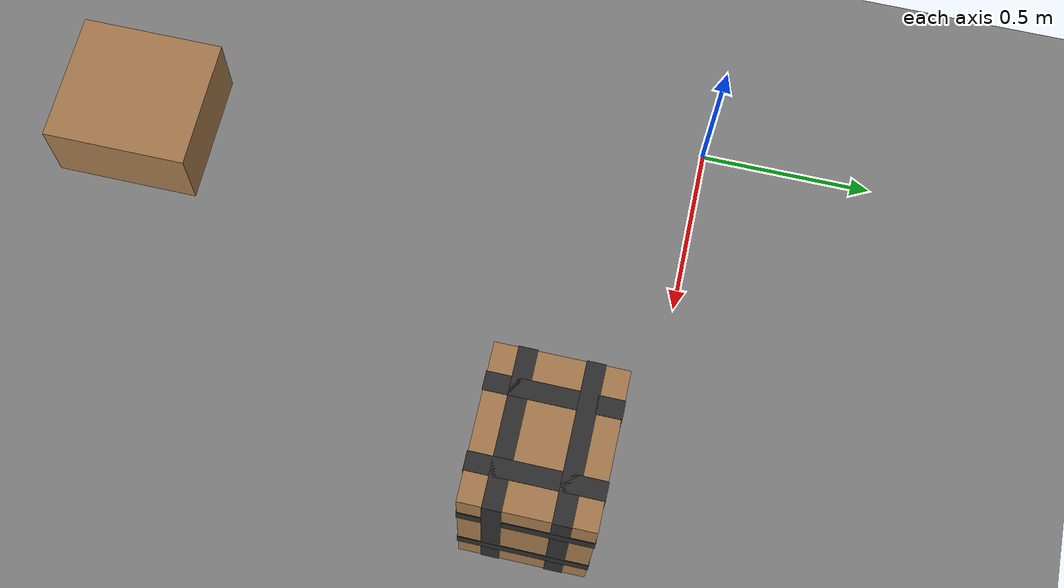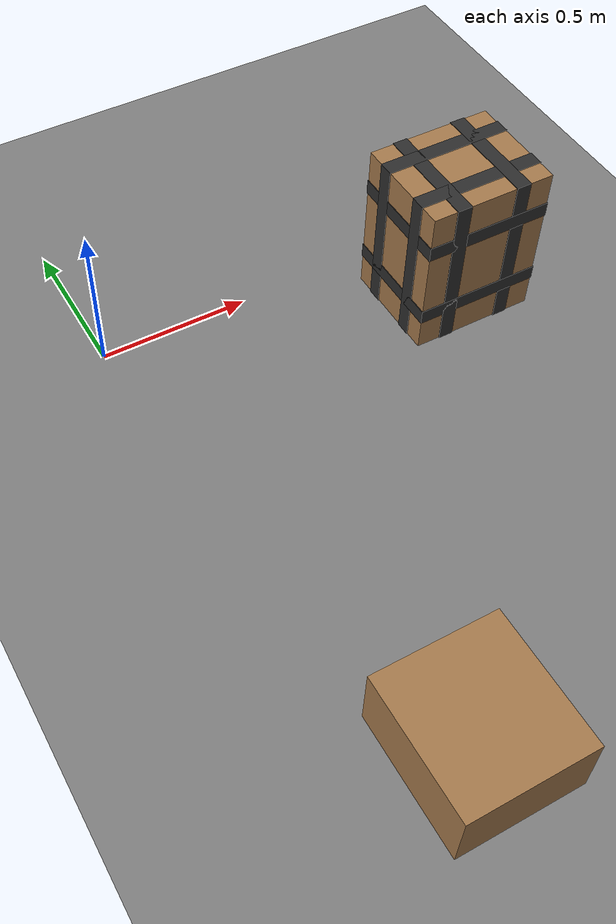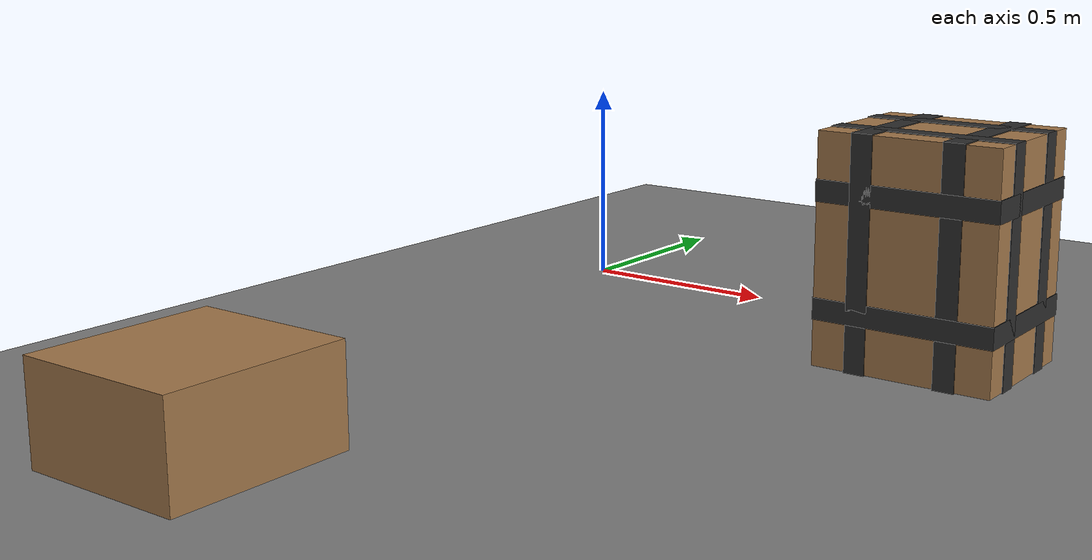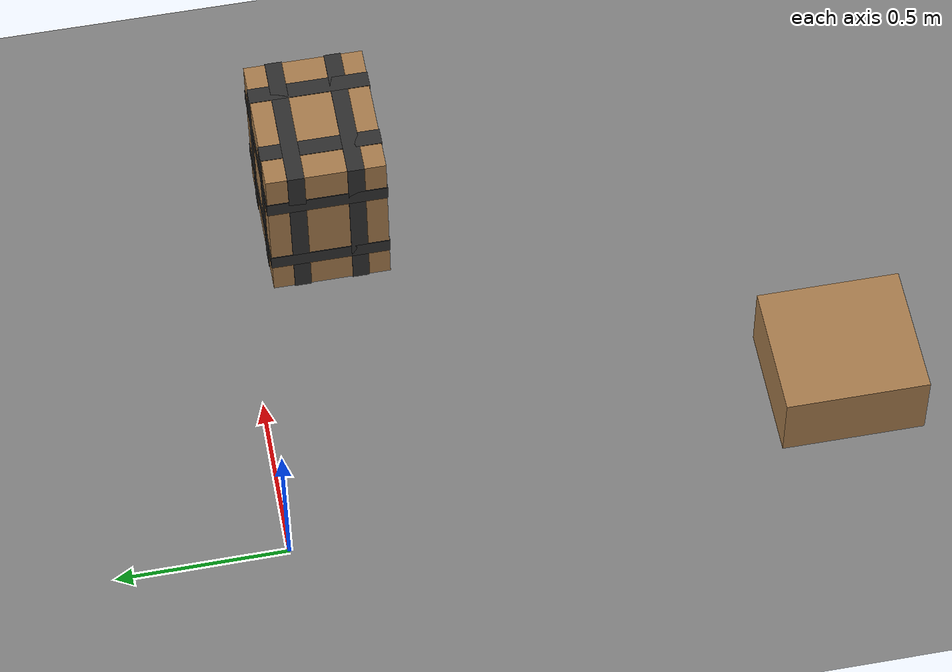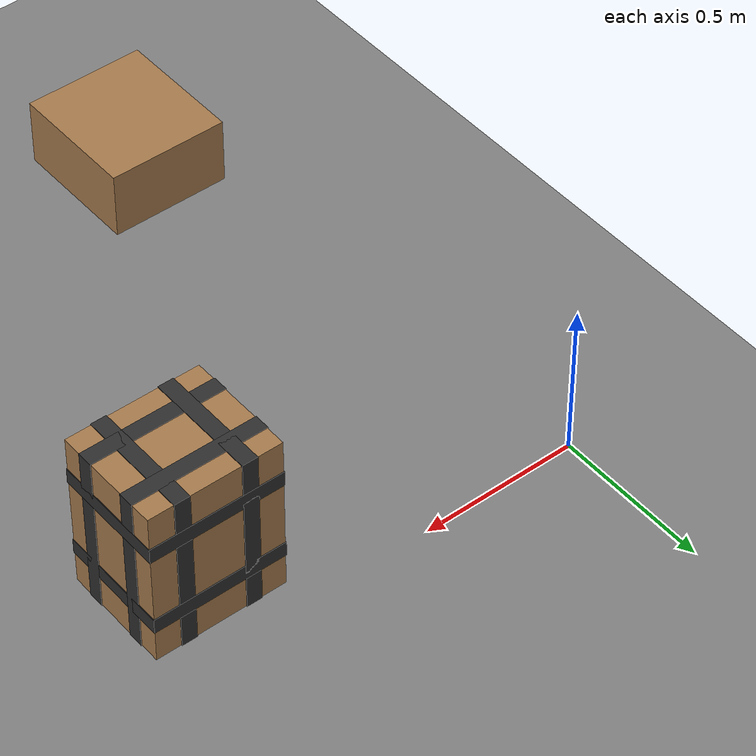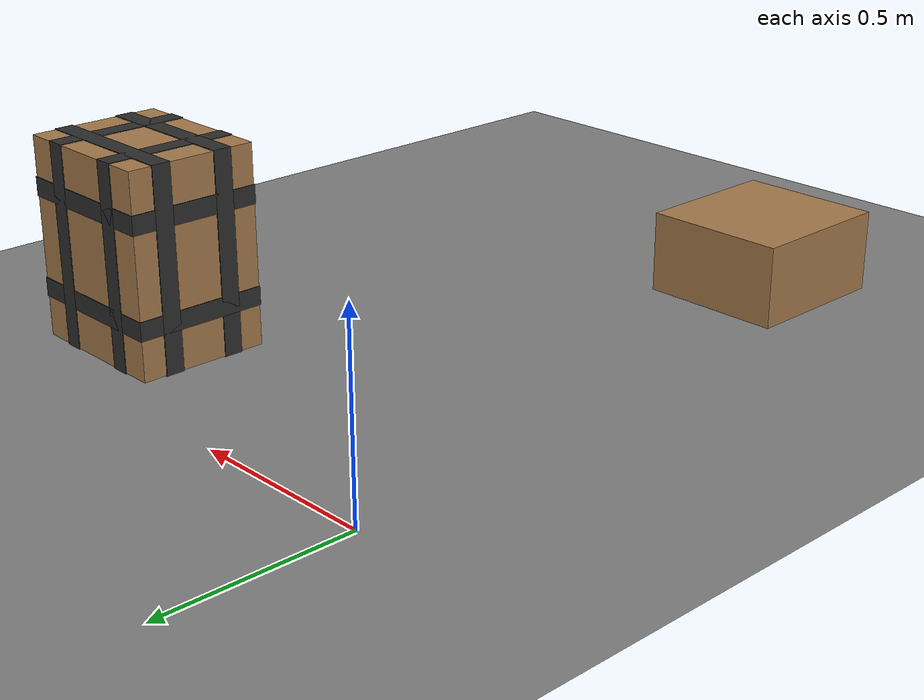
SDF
<sdf version="1.9">
 <world name="ecps295_lowbox_s20_monitor">
  <model name="ground_plane">
   <static>true</static>
   <link name="link">
    <collision name="collision">
     <geometry><plane><normal>0 0 1</normal><size>50 50</size></plane></geometry>
    </collision>
    <visual name="visual">
     <geometry><plane><normal>0 0 1</normal><size>50 50</size></plane></geometry>
     <material><ambient>0.5 0.5 0.5 1</ambient><diffuse>0.5 0.5 0.5 1</diffuse></material>
    </visual>
   </link>
  </model>
  <model name="lb0">
   <static>true</static>
   <pose>1.11 -0.27 0.265 0 0 0</pose>
   <link name="link">
    <collision name="c"><geometry><box><size>0.42 0.35 0.53</size></box></geometry></collision>
    <visual name="v">
     <geometry><box><size>0.42 0.35 0.53</size></box></geometry>
     <material><ambient>0.65 0.48 0.30 1</ambient><diffuse>0.65 0.48 0.30 1</diffuse></material>
    </visual>
    <visual name="tape_ring0">
     <pose>0.000 0.000 -0.133 0 0 0</pose>
     <geometry><box><size>0.424 0.354 0.050</size></box></geometry>
     <material><ambient>0.18 0.18 0.18 1</ambient><diffuse>0.18 0.18 0.18 1</diffuse></material>
    </visual>
    <visual name="tape_bx0">
     <pose>-0.105 0.000 0.000 0 0 0</pose>
     <geometry><box><size>0.050 0.354 0.534</size></box></geometry>
     <material><ambient>0.18 0.18 0.18 1</ambient><diffuse>0.18 0.18 0.18 1</diffuse></material>
    </visual>
    <visual name="tape_by0">
     <pose>0.000 -0.087 0.000 0 0 0</pose>
     <geometry><box><size>0.424 0.050 0.534</size></box></geometry>
     <material><ambient>0.18 0.18 0.18 1</ambient><diffuse>0.18 0.18 0.18 1</diffuse></material>
    </visual>
    <visual name="tape_ring1">
     <pose>0.000 0.000 0.133 0 0 0</pose>
     <geometry><box><size>0.424 0.354 0.050</size></box></geometry>
     <material><ambient>0.18 0.18 0.18 1</ambient><diffuse>0.18 0.18 0.18 1</diffuse></material>
    </visual>
    <visual name="tape_bx1">
     <pose>0.105 0.000 0.000 0 0 0</pose>
     <geometry><box><size>0.050 0.354 0.534</size></box></geometry>
     <material><ambient>0.18 0.18 0.18 1</ambient><diffuse>0.18 0.18 0.18 1</diffuse></material>
    </visual>
    <visual name="tape_by1">
     <pose>0.000 0.087 0.000 0 0 0</pose>
     <geometry><box><size>0.424 0.050 0.534</size></box></geometry>
     <material><ambient>0.18 0.18 0.18 1</ambient><diffuse>0.18 0.18 0.18 1</diffuse></material>
    </visual>
   </link>
  </model>
  <model name="lb1">
   <static>true</static>
   <pose>0.27 -1.66 0.112 0 0 0</pose>
   <link name="link">
    <collision name="c"><geometry><box><size>0.39 0.42 0.22</size></box></geometry></collision>
    <visual name="v">
     <geometry><box><size>0.39 0.42 0.22</size></box></geometry>
     <material><ambient>0.65 0.48 0.30 1</ambient><diffuse>0.65 0.48 0.30 1</diffuse></material>
    </visual>
   </link>
  </model>
 </world>
</sdf>
